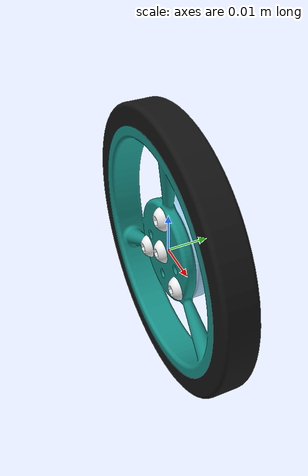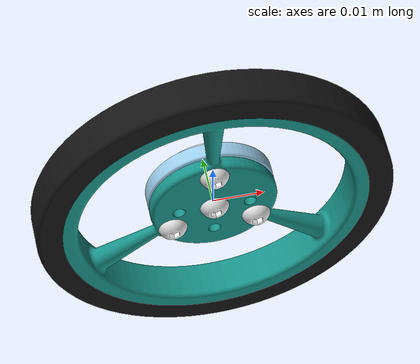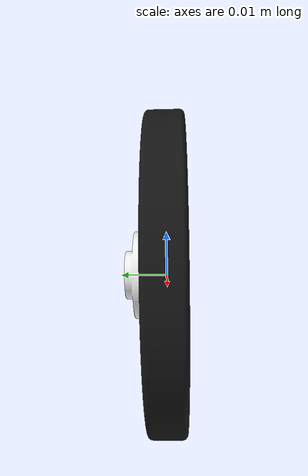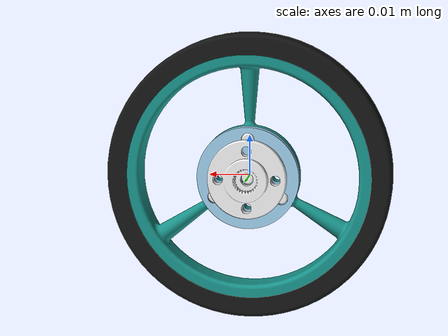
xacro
<?xml version="1.0" ?>
<robot xmlns:xacro="http://www.ros.org/wiki/xacro">

    <xacro:property name="wheel_right_set_m" value="0.0258312" />
    <xacro:property name="wheel_right_set_o_xyz" value="0 0.0025 0" />
    <xacro:property name="wheel_right_set_o_rpy" value="${pi/2} 0 0" />
    xacro:<xacro:property name="wheel_right_set_h" value="0.0130" />

    <xacro:property name="wheel_right_d" value="0.070" />
    <xacro:property name="wheel_right_r" value="${wheel_right_d / 2}" />
    <xacro:property name="wheel_right_o_xyz" value="0 0 0" />
    <xacro:property name="wheel_right_o_rpy" value="0 0 0" />

<!-- Link wheel_right -->
  <link name="wheel_right">

    <xacro:cylinder_inertia m="${wheel_right_set_m}" r="${wheel_right_r}" h="${wheel_right_set_h}" o_xyz="${wheel_right_set_o_xyz}" o_rpy="${wheel_right_set_o_rpy}"/>

    <collision>
      <origin xyz="${wheel_right_o_xyz}" rpy="${wheel_right_o_rpy}"/>
      <geometry>
        <sphere radius="${wheel_right_r}"/>
      </geometry>
    </collision>

    <!-- Part 25t_servo_horn_r -->
    <visual>
      <origin xyz="0 0.00699 0" rpy="0 0 0"/>
      <geometry>
        <mesh filename="package://gizmo_description/meshes/25t_servo_horn_r.stl"/>
      </geometry>
      <material name="25t_servo_horn_r_material">
        <color rgba="0.960784 0.960784 0.964706 1"/>
      </material>
    </visual>

    <!-- Part servo_horn_adapter_wheel70mm__r -->
    <visual>
      <origin xyz="0 0.0045 0" rpy="0 0 0"/>
      <geometry>
        <mesh filename="package://gizmo_description/meshes/servo_horn_adapter_wheel70mm__r.stl"/>
      </geometry>
      <material name="servo_horn_adapter_wheel70mm__r_material">
        <color rgba="0.615686 0.811765 0.929412 1"/>
      </material>
    </visual>

    <!-- Part rim_2 -->
    <visual>
      <origin xyz="0 0 0" rpy="0 0 0"/>
      <geometry>
        <mesh filename="package://gizmo_description/meshes/rim.stl"/>
      </geometry>
      <material name="rim_2_material">
        <color rgba="0.0941176 0.580392 0.545098 1"/>
      </material>
    </visual>

    <!-- Part tire_2 -->
    <visual>
      <origin xyz="0 0 0" rpy="0 0 0"/>
      <geometry>
        <mesh filename="package://gizmo_description/meshes/tire.stl"/>
      </geometry>
      <material name="tire_2_material">
        <color rgba="0.0784314 0.0784314 0.0784314 1"/>
      </material>
    </visual>

    <!-- Part bn_1593_1348663_hexagon_socket_button_head_screw_m3x6_19 -->
    <visual>
      <origin xyz="-0.00824889 -0.0015 -0.0047625" rpy="-${pi/2} 0 ${pi/2}"/>
      <geometry>
        <mesh filename="package://gizmo_description/meshes/bn_1593_1348663_hexagon_socket_button_head_screw_m3x6.stl"/>
      </geometry>
      <material name="bn_1593_1348663_hexagon_socket_button_head_screw_m3x6_19_material">
        <color rgba="0.941176 0.941176 0.941176 1"/>
      </material>
    </visual>

    <!-- Part bn_1593_1348663_hexagon_socket_button_head_screw_m3x6_20 -->
    <visual>
      <origin xyz="0 -0.0015 0.009525" rpy="-${pi/2} 0 ${pi/2}"/>
      <geometry>
        <mesh filename="package://gizmo_description/meshes/bn_1593_1348663_hexagon_socket_button_head_screw_m3x6.stl"/>
      </geometry>
      <material name="bn_1593_1348663_hexagon_socket_button_head_screw_m3x6_20_material">
        <color rgba="0.941176 0.941176 0.941176 1"/>
      </material>
    </visual>

    <!-- Part bn_1593_1348663_hexagon_socket_button_head_screw_m3x6_21 -->
    <visual>
      <origin xyz="0 -0.0015 0" rpy="-${pi/2} 0 ${pi/2}"/>
      <geometry>
        <mesh filename="package://gizmo_description/meshes/bn_1593_1348663_hexagon_socket_button_head_screw_m3x6.stl"/>
      </geometry>
      <material name="bn_1593_1348663_hexagon_socket_button_head_screw_m3x6_21_material">
        <color rgba="0.941176 0.941176 0.941176 1"/>
      </material>
    </visual>

    <!-- Part bn_1593_1348663_hexagon_socket_button_head_screw_m3x6_22 -->
    <visual>
      <origin xyz="0.00824889 -0.0015 -0.0047625" rpy="-${pi/2} 0 ${pi/2}"/>
      <geometry>
        <mesh filename="package://gizmo_description/meshes/bn_1593_1348663_hexagon_socket_button_head_screw_m3x6.stl"/>
      </geometry>
      <material name="bn_1593_1348663_hexagon_socket_button_head_screw_m3x6_22_material">
        <color rgba="0.941176 0.941176 0.941176 1"/>
      </material>
    </visual>

  </link>

</robot>
